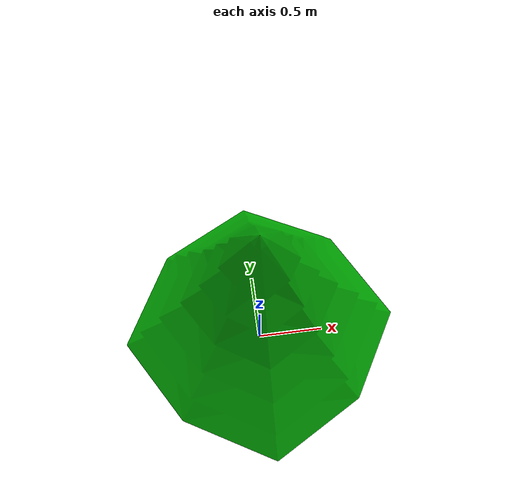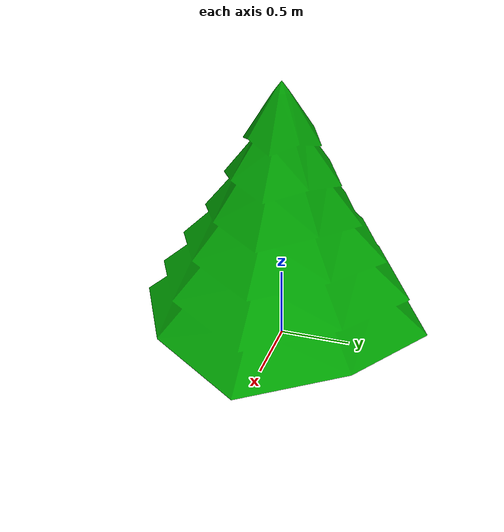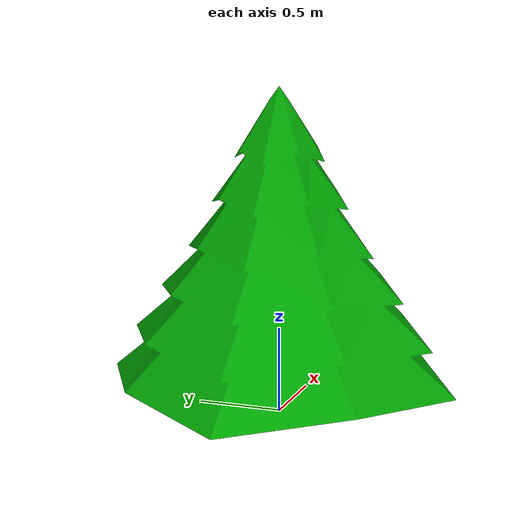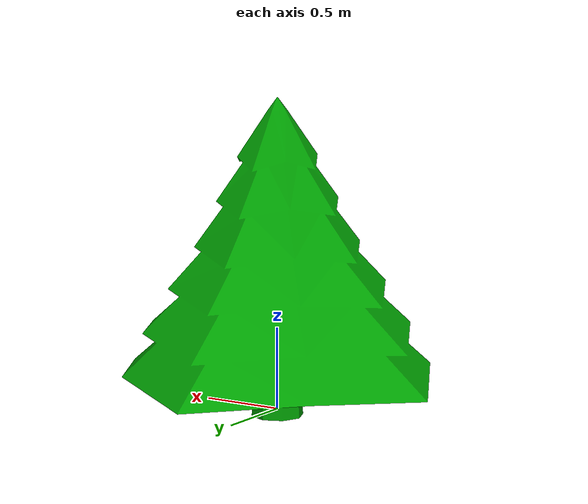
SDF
<?xml version="1.0"?>
<sdf version="1.5">
  <model name="smallbigtree_model">
    <static>
      true
    </static>
    <link name="smallbigtree_link">
      <inertial>
        <mass>0.390</mass>
        <inertia>
          <ixx>0.00058</ixx>
          <ixy>0</ixy>
          <ixz>0</ixz>
          <iyy>0.00058</iyy>
          <iyz>0</iyz>
          <izz>0.00019</izz>
        </inertia>
      </inertial>
      <collision name="smallbigtree_collision">
        <geometry>
          <mesh>
            <uri>model://smallbigtree/meshes/smallbigtree.dae</uri>
          </mesh>
        </geometry>
        <surface>
          <friction>
            <ode>
              <mu>1.0</mu>
              <mu2>1.0</mu2>
            </ode>
          </friction>
          <contact>
            <ode>
              <kp>10000000.0</kp>
              <kd>1.0</kd>
              <min_depth>0.001</min_depth>
              <max_vel>0.1</max_vel>
            </ode>
          </contact>
        </surface>
      </collision>
      <visual name="smallbigtree_visual">
        <geometry>
          <mesh>
            <uri>model://smallbigtree/meshes/smallbigtree.dae</uri>
          </mesh>
        </geometry>
      </visual>
    </link>
  </model>
</sdf>
